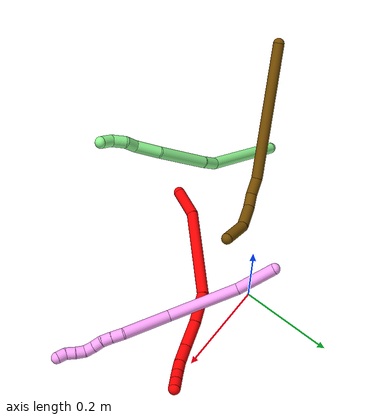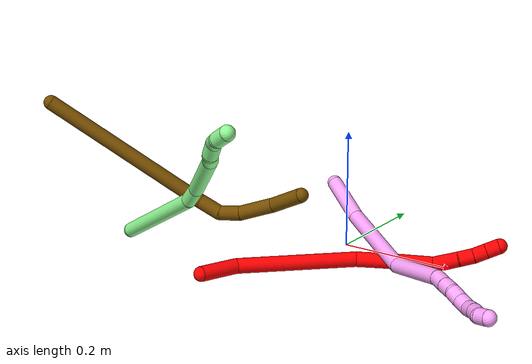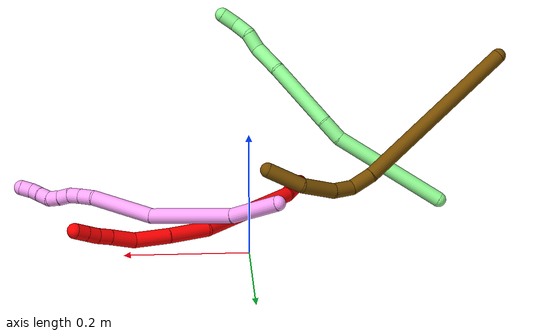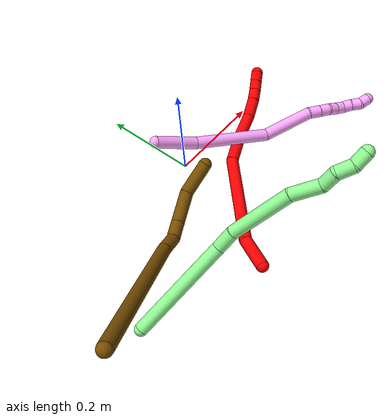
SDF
<sdf version="1.7">
 <world name="default">
  <model name="2">
   <static>0</static>
   <link name="2">
    <collision name="collision-cylinder-e_1_1_4">
     <pose>0.005098 0.009315 -0.030185 -2.84228 0.160003 -0.977372</pose>
     <geometry><cylinder><radius>0.0125</radius><length>0.063996</length></cylinder></geometry>
     <surface>
      <friction><ode><mu>1.16</mu><mu2>1.16</mu2><slip1>0</slip1><slip2>0</slip2></ode></friction>
      <contact><ode><kp>1e+06</kp><kd>1</kd><max_vel>0</max_vel><min_depth>0.001</min_depth></ode></contact>
     </surface>
    </collision>
    <visual name="visual-cylinder-e_1_1_4">
     <pose>0.005098 0.009315 -0.030185 -2.84228 0.160003 -0.977372</pose>
     <geometry><cylinder><radius>0.0125</radius><length>0.063996</length></cylinder></geometry>
     <material><ambient>1 0 0 1</ambient></material>
    </visual>
    <collision name="collision-cylinder-e_2_4_5">
     <pose>0.060705 0.046745 -0.141055 -2.80629 0.533883 -2.03324</pose>
     <geometry><cylinder><radius>0.0125</radius><length>0.198511</length></cylinder></geometry>
     <surface>
      <friction><ode><mu>1.16</mu><mu2>1.16</mu2><slip1>0</slip1><slip2>0</slip2></ode></friction>
      <contact><ode><kp>1e+06</kp><kd>1</kd><max_vel>0</max_vel><min_depth>0.001</min_depth></ode></contact>
     </surface>
    </collision>
    <visual name="visual-cylinder-e_2_4_5">
     <pose>0.060705 0.046745 -0.141055 -2.80629 0.533883 -2.03324</pose>
     <geometry><cylinder><radius>0.0125</radius><length>0.198511</length></cylinder></geometry>
     <material><ambient>1 0 0 1</ambient></material>
    </visual>
    <collision name="collision-cylinder-e_3_5_6">
     <pose>0.137865 0.084164 -0.241085 -2.69333 0.892724 -2.25252</pose>
     <geometry><cylinder><radius>0.0125</radius><length>0.068441</length></cylinder></geometry>
     <surface>
      <friction><ode><mu>1.16</mu><mu2>1.16</mu2><slip1>0</slip1><slip2>0</slip2></ode></friction>
      <contact><ode><kp>1e+06</kp><kd>1</kd><max_vel>0</max_vel><min_depth>0.001</min_depth></ode></contact>
     </surface>
    </collision>
    <visual name="visual-cylinder-e_3_5_6">
     <pose>0.137865 0.084164 -0.241085 -2.69333 0.892724 -2.25252</pose>
     <geometry><cylinder><radius>0.0125</radius><length>0.068441</length></cylinder></geometry>
     <material><ambient>1 0 0 1</ambient></material>
    </visual>
    <collision name="collision-cylinder-e_4_6_7">
     <pose>0.189086 0.101409 -0.27487 -2.63875 0.980029 -2.24405</pose>
     <geometry><cylinder><radius>0.0125</radius><length>0.059171</length></cylinder></geometry>
     <surface>
      <friction><ode><mu>1.16</mu><mu2>1.16</mu2><slip1>0</slip1><slip2>0</slip2></ode></friction>
      <contact><ode><kp>1e+06</kp><kd>1</kd><max_vel>0</max_vel><min_depth>0.001</min_depth></ode></contact>
     </surface>
    </collision>
    <visual name="visual-cylinder-e_4_6_7">
     <pose>0.189086 0.101409 -0.27487 -2.63875 0.980029 -2.24405</pose>
     <geometry><cylinder><radius>0.0125</radius><length>0.059171</length></cylinder></geometry>
     <material><ambient>1 0 0 1</ambient></material>
    </visual>
    <collision name="collision-cylinder-e_5_7_8">
     <pose>0.229159 0.120488 -0.298431 -2.25704 0.822365 -1.48833</pose>
     <geometry><cylinder><radius>0.0125</radius><length>0.042311</length></cylinder></geometry>
     <surface>
      <friction><ode><mu>1.16</mu><mu2>1.16</mu2><slip1>0</slip1><slip2>0</slip2></ode></friction>
      <contact><ode><kp>1e+06</kp><kd>1</kd><max_vel>0</max_vel><min_depth>0.001</min_depth></ode></contact>
     </surface>
    </collision>
    <visual name="visual-cylinder-e_5_7_8">
     <pose>0.229159 0.120488 -0.298431 -2.25704 0.822365 -1.48833</pose>
     <geometry><cylinder><radius>0.0125</radius><length>0.042311</length></cylinder></geometry>
     <material><ambient>1 0 0 1</ambient></material>
    </visual>
    <collision name="collision-cylinder-e_6_8_9">
     <pose>0.252823 0.13809 -0.313831 -2.34164 0.735975 -1.47877</pose>
     <geometry><cylinder><radius>0.0125</radius><length>0.024317</length></cylinder></geometry>
     <surface>
      <friction><ode><mu>1.16</mu><mu2>1.16</mu2><slip1>0</slip1><slip2>0</slip2></ode></friction>
      <contact><ode><kp>1e+06</kp><kd>1</kd><max_vel>0</max_vel><min_depth>0.001</min_depth></ode></contact>
     </surface>
    </collision>
    <visual name="visual-cylinder-e_6_8_9">
     <pose>0.252823 0.13809 -0.313831 -2.34164 0.735975 -1.47877</pose>
     <geometry><cylinder><radius>0.0125</radius><length>0.024317</length></cylinder></geometry>
     <material><ambient>1 0 0 1</ambient></material>
    </visual>
    <collision name="collision-cylinder-e_7_9_10">
     <pose>0.267429 0.151394 -0.325367 -2.22603 0.641538 -1.1866</pose>
     <geometry><cylinder><radius>0.0125</radius><length>0.021536</length></cylinder></geometry>
     <surface>
      <friction><ode><mu>1.16</mu><mu2>1.16</mu2><slip1>0</slip1><slip2>0</slip2></ode></friction>
      <contact><ode><kp>1e+06</kp><kd>1</kd><max_vel>0</max_vel><min_depth>0.001</min_depth></ode></contact>
     </surface>
    </collision>
    <visual name="visual-cylinder-e_7_9_10">
     <pose>0.267429 0.151394 -0.325367 -2.22603 0.641538 -1.1866</pose>
     <geometry><cylinder><radius>0.0125</radius><length>0.021536</length></cylinder></geometry>
     <material><ambient>1 0 0 1</ambient></material>
    </visual>
    <collision name="collision-cylinder-e_8_10_2">
     <pose>0.280381 0.165121 -0.335927 -2.22706 0.642648 -1.18952</pose>
     <geometry><cylinder><radius>0.0125</radius><length>0.021716</length></cylinder></geometry>
     <surface>
      <friction><ode><mu>1.16</mu><mu2>1.16</mu2><slip1>0</slip1><slip2>0</slip2></ode></friction>
      <contact><ode><kp>1e+06</kp><kd>1</kd><max_vel>0</max_vel><min_depth>0.001</min_depth></ode></contact>
     </surface>
    </collision>
    <visual name="visual-cylinder-e_8_10_2">
     <pose>0.280381 0.165121 -0.335927 -2.22706 0.642648 -1.18952</pose>
     <geometry><cylinder><radius>0.0125</radius><length>0.021716</length></cylinder></geometry>
     <material><ambient>1 0 0 1</ambient></material>
    </visual>
    <collision name="collision-sphere-2">
     <pose>0.286888 0.172008 -0.341231 0 -0 0</pose>
     <geometry><sphere><radius>0.0125</radius></sphere></geometry>
     <surface>
      <friction><ode><mu>1.16</mu><mu2>1.16</mu2><slip1>0</slip1><slip2>0</slip2></ode></friction>
      <contact><ode><kp>1e+06</kp><kd>1</kd><max_vel>0</max_vel><min_depth>0.001</min_depth></ode></contact>
     </surface>
    </collision>
    <visual name="visual-sphere-2">
     <pose>0.286888 0.172008 -0.341231 0 -0 0</pose>
     <geometry><sphere><radius>0.0125</radius></sphere></geometry>
     <material><ambient>1 0 0 1</ambient></material>
    </visual>
    <collision name="collision-sphere-10">
     <pose>0.273873 0.158235 -0.330624 0 -0 0</pose>
     <geometry><sphere><radius>0.0125</radius></sphere></geometry>
     <surface>
      <friction><ode><mu>1.16</mu><mu2>1.16</mu2><slip1>0</slip1><slip2>0</slip2></ode></friction>
      <contact><ode><kp>1e+06</kp><kd>1</kd><max_vel>0</max_vel><min_depth>0.001</min_depth></ode></contact>
     </surface>
    </collision>
    <visual name="visual-sphere-10">
     <pose>0.273873 0.158235 -0.330624 0 -0 0</pose>
     <geometry><sphere><radius>0.0125</radius></sphere></geometry>
     <material><ambient>1 0 0 1</ambient></material>
    </visual>
    <collision name="collision-sphere-9">
     <pose>0.260986 0.144554 -0.32011 0 -0 0</pose>
     <geometry><sphere><radius>0.0125</radius></sphere></geometry>
     <surface>
      <friction><ode><mu>1.16</mu><mu2>1.16</mu2><slip1>0</slip1><slip2>0</slip2></ode></friction>
      <contact><ode><kp>1e+06</kp><kd>1</kd><max_vel>0</max_vel><min_depth>0.001</min_depth></ode></contact>
     </surface>
    </collision>
    <visual name="visual-sphere-9">
     <pose>0.260986 0.144554 -0.32011 0 -0 0</pose>
     <geometry><sphere><radius>0.0125</radius></sphere></geometry>
     <material><ambient>1 0 0 1</ambient></material>
    </visual>
    <collision name="collision-sphere-4">
     <pose>0.010196 0.018629 -0.06037 0 -0 0</pose>
     <geometry><sphere><radius>0.0125</radius></sphere></geometry>
     <surface>
      <friction><ode><mu>1.16</mu><mu2>1.16</mu2><slip1>0</slip1><slip2>0</slip2></ode></friction>
      <contact><ode><kp>1e+06</kp><kd>1</kd><max_vel>0</max_vel><min_depth>0.001</min_depth></ode></contact>
     </surface>
    </collision>
    <visual name="visual-sphere-4">
     <pose>0.010196 0.018629 -0.06037 0 -0 0</pose>
     <geometry><sphere><radius>0.0125</radius></sphere></geometry>
     <material><ambient>1 0 0 1</ambient></material>
    </visual>
    <collision name="collision-sphere-1">
     <geometry><sphere><radius>0.0125</radius></sphere></geometry>
     <surface>
      <friction><ode><mu>1.16</mu><mu2>1.16</mu2><slip1>0</slip1><slip2>0</slip2></ode></friction>
      <contact><ode><kp>1e+06</kp><kd>1</kd><max_vel>0</max_vel><min_depth>0.001</min_depth></ode></contact>
     </surface>
    </collision>
    <visual name="visual-sphere-1">
     <geometry><sphere><radius>0.0125</radius></sphere></geometry>
     <material><ambient>1 0 0 1</ambient></material>
    </visual>
    <collision name="collision-sphere-8">
     <pose>0.244661 0.131625 -0.307552 0 -0 0</pose>
     <geometry><sphere><radius>0.0125</radius></sphere></geometry>
     <surface>
      <friction><ode><mu>1.16</mu><mu2>1.16</mu2><slip1>0</slip1><slip2>0</slip2></ode></friction>
      <contact><ode><kp>1e+06</kp><kd>1</kd><max_vel>0</max_vel><min_depth>0.001</min_depth></ode></contact>
     </surface>
    </collision>
    <visual name="visual-sphere-8">
     <pose>0.244661 0.131625 -0.307552 0 -0 0</pose>
     <geometry><sphere><radius>0.0125</radius></sphere></geometry>
     <material><ambient>1 0 0 1</ambient></material>
    </visual>
    <collision name="collision-sphere-5">
     <pose>0.111214 0.074861 -0.221739 0 -0 0</pose>
     <geometry><sphere><radius>0.0125</radius></sphere></geometry>
     <surface>
      <friction><ode><mu>1.16</mu><mu2>1.16</mu2><slip1>0</slip1><slip2>0</slip2></ode></friction>
      <contact><ode><kp>1e+06</kp><kd>1</kd><max_vel>0</max_vel><min_depth>0.001</min_depth></ode></contact>
     </surface>
    </collision>
    <visual name="visual-sphere-5">
     <pose>0.111214 0.074861 -0.221739 0 -0 0</pose>
     <geometry><sphere><radius>0.0125</radius></sphere></geometry>
     <material><ambient>1 0 0 1</ambient></material>
    </visual>
    <collision name="collision-sphere-6">
     <pose>0.164515 0.093468 -0.26043 0 -0 0</pose>
     <geometry><sphere><radius>0.0125</radius></sphere></geometry>
     <surface>
      <friction><ode><mu>1.16</mu><mu2>1.16</mu2><slip1>0</slip1><slip2>0</slip2></ode></friction>
      <contact><ode><kp>1e+06</kp><kd>1</kd><max_vel>0</max_vel><min_depth>0.001</min_depth></ode></contact>
     </surface>
    </collision>
    <visual name="visual-sphere-6">
     <pose>0.164515 0.093468 -0.26043 0 -0 0</pose>
     <geometry><sphere><radius>0.0125</radius></sphere></geometry>
     <material><ambient>1 0 0 1</ambient></material>
    </visual>
    <collision name="collision-sphere-7">
     <pose>0.213658 0.109351 -0.289309 0 -0 0</pose>
     <geometry><sphere><radius>0.0125</radius></sphere></geometry>
     <surface>
      <friction><ode><mu>1.16</mu><mu2>1.16</mu2><slip1>0</slip1><slip2>0</slip2></ode></friction>
      <contact><ode><kp>1e+06</kp><kd>1</kd><max_vel>0</max_vel><min_depth>0.001</min_depth></ode></contact>
     </surface>
    </collision>
    <visual name="visual-sphere-7">
     <pose>0.213658 0.109351 -0.289309 0 -0 0</pose>
     <geometry><sphere><radius>0.0125</radius></sphere></geometry>
     <material><ambient>1 0 0 1</ambient></material>
    </visual>
    <inertial>
     <pose>0.121386 0.073877 -0.194515 0 -0 0</pose>
     <mass>0.5</mass>
     <inertia>
      <ixx>-0.000795</ixx>
      <ixy>0</ixy>
      <ixz>0</ixz>
      <iyy>-0.000135</iyy>
      <iyz>0</iyz>
      <izz>-0.000629</izz>
     </inertia>
    </inertial>
   </link>
   <pose>-0.10079 -0.274226 0.012172 1.30045 0.121449 -0.247506</pose>
  </model>
  <model name="4">
   <static>0</static>
   <link name="4">
    <collision name="collision-cylinder-e_1_1_4">
     <pose>0.033976 -0.009495 0.026928 0.339007 0.871908 0.159119</pose>
     <geometry><cylinder><radius>0.0125</radius><length>0.088762</length></cylinder></geometry>
     <surface>
      <friction><ode><mu>1.16</mu><mu2>1.16</mu2><slip1>0</slip1><slip2>0</slip2></ode></friction>
      <contact><ode><kp>1e+06</kp><kd>1</kd><max_vel>0</max_vel><min_depth>0.001</min_depth></ode></contact>
     </surface>
    </collision>
    <visual name="visual-cylinder-e_1_1_4">
     <pose>0.033976 -0.009495 0.026928 0.339007 0.871908 0.159119</pose>
     <geometry><cylinder><radius>0.0125</radius><length>0.088762</length></cylinder></geometry>
     <material><ambient>1 0.65098 0.996078 1</ambient></material>
    </visual>
    <collision name="collision-cylinder-e_2_4_5">
     <pose>0.135232 -0.042541 0.08678 0.620927 1.02915 0.35889</pose>
     <geometry><cylinder><radius>0.0125</radius><length>0.157037</length></cylinder></geometry>
     <surface>
      <friction><ode><mu>1.16</mu><mu2>1.16</mu2><slip1>0</slip1><slip2>0</slip2></ode></friction>
      <contact><ode><kp>1e+06</kp><kd>1</kd><max_vel>0</max_vel><min_depth>0.001</min_depth></ode></contact>
     </surface>
    </collision>
    <visual name="visual-cylinder-e_2_4_5">
     <pose>0.135232 -0.042541 0.08678 0.620927 1.02915 0.35889</pose>
     <geometry><cylinder><radius>0.0125</radius><length>0.157037</length></cylinder></geometry>
     <material><ambient>1 0.65098 0.996078 1</ambient></material>
    </visual>
    <collision name="collision-cylinder-e_3_5_6">
     <pose>0.245537 -0.09602 0.127688 1.31009 0.946833 0.749825</pose>
     <geometry><cylinder><radius>0.0125</radius><length>0.106031</length></cylinder></geometry>
     <surface>
      <friction><ode><mu>1.16</mu><mu2>1.16</mu2><slip1>0</slip1><slip2>0</slip2></ode></friction>
      <contact><ode><kp>1e+06</kp><kd>1</kd><max_vel>0</max_vel><min_depth>0.001</min_depth></ode></contact>
     </surface>
    </collision>
    <visual name="visual-cylinder-e_3_5_6">
     <pose>0.245537 -0.09602 0.127688 1.31009 0.946833 0.749825</pose>
     <geometry><cylinder><radius>0.0125</radius><length>0.106031</length></cylinder></geometry>
     <material><ambient>1 0.65098 0.996078 1</ambient></material>
    </visual>
    <collision name="collision-cylinder-e_4_6_7">
     <pose>0.299839 -0.130254 0.139748 0.812802 1.08669 0.508608</pose>
     <geometry><cylinder><radius>0.0125</radius><length>0.02548</length></cylinder></geometry>
     <surface>
      <friction><ode><mu>1.16</mu><mu2>1.16</mu2><slip1>0</slip1><slip2>0</slip2></ode></friction>
      <contact><ode><kp>1e+06</kp><kd>1</kd><max_vel>0</max_vel><min_depth>0.001</min_depth></ode></contact>
     </surface>
    </collision>
    <visual name="visual-cylinder-e_4_6_7">
     <pose>0.299839 -0.130254 0.139748 0.812802 1.08669 0.508608</pose>
     <geometry><cylinder><radius>0.0125</radius><length>0.02548</length></cylinder></geometry>
     <material><ambient>1 0.65098 0.996078 1</ambient></material>
    </visual>
    <collision name="collision-cylinder-e_5_7_8">
     <pose>0.320498 -0.138662 0.14762 0.824203 1.03366 0.487035</pose>
     <geometry><cylinder><radius>0.0125</radius><length>0.021843</length></cylinder></geometry>
     <surface>
      <friction><ode><mu>1.16</mu><mu2>1.16</mu2><slip1>0</slip1><slip2>0</slip2></ode></friction>
      <contact><ode><kp>1e+06</kp><kd>1</kd><max_vel>0</max_vel><min_depth>0.001</min_depth></ode></contact>
     </surface>
    </collision>
    <visual name="visual-cylinder-e_5_7_8">
     <pose>0.320498 -0.138662 0.14762 0.824203 1.03366 0.487035</pose>
     <geometry><cylinder><radius>0.0125</radius><length>0.021843</length></cylinder></geometry>
     <material><ambient>1 0.65098 0.996078 1</ambient></material>
    </visual>
    <collision name="collision-cylinder-e_6_8_9">
     <pose>0.33713 -0.146144 0.157466 0.5095 0.807695 0.221651</pose>
     <geometry><cylinder><radius>0.0125</radius><length>0.020058</length></cylinder></geometry>
     <surface>
      <friction><ode><mu>1.16</mu><mu2>1.16</mu2><slip1>0</slip1><slip2>0</slip2></ode></friction>
      <contact><ode><kp>1e+06</kp><kd>1</kd><max_vel>0</max_vel><min_depth>0.001</min_depth></ode></contact>
     </surface>
    </collision>
    <visual name="visual-cylinder-e_6_8_9">
     <pose>0.33713 -0.146144 0.157466 0.5095 0.807695 0.221651</pose>
     <geometry><cylinder><radius>0.0125</radius><length>0.020058</length></cylinder></geometry>
     <material><ambient>1 0.65098 0.996078 1</ambient></material>
    </visual>
    <collision name="collision-cylinder-e_7_9_10">
     <pose>0.352437 -0.153297 0.16861 0.637488 0.904419 0.317908</pose>
     <geometry><cylinder><radius>0.0125</radius><length>0.020505</length></cylinder></geometry>
     <surface>
      <friction><ode><mu>1.16</mu><mu2>1.16</mu2><slip1>0</slip1><slip2>0</slip2></ode></friction>
      <contact><ode><kp>1e+06</kp><kd>1</kd><max_vel>0</max_vel><min_depth>0.001</min_depth></ode></contact>
     </surface>
    </collision>
    <visual name="visual-cylinder-e_7_9_10">
     <pose>0.352437 -0.153297 0.16861 0.637488 0.904419 0.317908</pose>
     <geometry><cylinder><radius>0.0125</radius><length>0.020505</length></cylinder></geometry>
     <material><ambient>1 0.65098 0.996078 1</ambient></material>
    </visual>
    <collision name="collision-cylinder-e_8_10_11">
     <pose>0.369835 -0.160925 0.17434 1.40717 1.17449 1.02811</pose>
     <geometry><cylinder><radius>0.0125</radius><length>0.020249</length></cylinder></geometry>
     <surface>
      <friction><ode><mu>1.16</mu><mu2>1.16</mu2><slip1>0</slip1><slip2>0</slip2></ode></friction>
      <contact><ode><kp>1e+06</kp><kd>1</kd><max_vel>0</max_vel><min_depth>0.001</min_depth></ode></contact>
     </surface>
    </collision>
    <visual name="visual-cylinder-e_8_10_11">
     <pose>0.369835 -0.160925 0.17434 1.40717 1.17449 1.02811</pose>
     <geometry><cylinder><radius>0.0125</radius><length>0.020249</length></cylinder></geometry>
     <material><ambient>1 0.65098 0.996078 1</ambient></material>
    </visual>
    <collision name="collision-cylinder-e_9_11_12">
     <pose>0.388856 -0.167159 0.175876 1.20904 1.31393 0.979044</pose>
     <geometry><cylinder><radius>0.0125</radius><length>0.020018</length></cylinder></geometry>
     <surface>
      <friction><ode><mu>1.16</mu><mu2>1.16</mu2><slip1>0</slip1><slip2>0</slip2></ode></friction>
      <contact><ode><kp>1e+06</kp><kd>1</kd><max_vel>0</max_vel><min_depth>0.001</min_depth></ode></contact>
     </surface>
    </collision>
    <visual name="visual-cylinder-e_9_11_12">
     <pose>0.388856 -0.167159 0.175876 1.20904 1.31393 0.979044</pose>
     <geometry><cylinder><radius>0.0125</radius><length>0.020018</length></cylinder></geometry>
     <material><ambient>1 0.65098 0.996078 1</ambient></material>
    </visual>
    <collision name="collision-cylinder-e_10_12_2">
     <pose>0.40604 -0.175964 0.178382 1.32598 0.847605 0.677443</pose>
     <geometry><cylinder><radius>0.0125</radius><length>0.020018</length></cylinder></geometry>
     <surface>
      <friction><ode><mu>1.16</mu><mu2>1.16</mu2><slip1>0</slip1><slip2>0</slip2></ode></friction>
      <contact><ode><kp>1e+06</kp><kd>1</kd><max_vel>0</max_vel><min_depth>0.001</min_depth></ode></contact>
     </surface>
    </collision>
    <visual name="visual-cylinder-e_10_12_2">
     <pose>0.40604 -0.175964 0.178382 1.32598 0.847605 0.677443</pose>
     <geometry><cylinder><radius>0.0125</radius><length>0.020018</length></cylinder></geometry>
     <material><ambient>1 0.65098 0.996078 1</ambient></material>
    </visual>
    <collision name="collision-sphere-2">
     <pose>0.413544 -0.18239 0.179987 0 -0 0</pose>
     <geometry><sphere><radius>0.0125</radius></sphere></geometry>
     <surface>
      <friction><ode><mu>1.16</mu><mu2>1.16</mu2><slip1>0</slip1><slip2>0</slip2></ode></friction>
      <contact><ode><kp>1e+06</kp><kd>1</kd><max_vel>0</max_vel><min_depth>0.001</min_depth></ode></contact>
     </surface>
    </collision>
    <visual name="visual-sphere-2">
     <pose>0.413544 -0.18239 0.179987 0 -0 0</pose>
     <geometry><sphere><radius>0.0125</radius></sphere></geometry>
     <material><ambient>1 0.65098 0.996078 1</ambient></material>
    </visual>
    <collision name="collision-sphere-12">
     <pose>0.398536 -0.169537 0.176776 0 -0 0</pose>
     <geometry><sphere><radius>0.0125</radius></sphere></geometry>
     <surface>
      <friction><ode><mu>1.16</mu><mu2>1.16</mu2><slip1>0</slip1><slip2>0</slip2></ode></friction>
      <contact><ode><kp>1e+06</kp><kd>1</kd><max_vel>0</max_vel><min_depth>0.001</min_depth></ode></contact>
     </surface>
    </collision>
    <visual name="visual-sphere-12">
     <pose>0.398536 -0.169537 0.176776 0 -0 0</pose>
     <geometry><sphere><radius>0.0125</radius></sphere></geometry>
     <material><ambient>1 0.65098 0.996078 1</ambient></material>
    </visual>
    <collision name="collision-sphere-11">
     <pose>0.379175 -0.164781 0.174976 0 -0 0</pose>
     <geometry><sphere><radius>0.0125</radius></sphere></geometry>
     <surface>
      <friction><ode><mu>1.16</mu><mu2>1.16</mu2><slip1>0</slip1><slip2>0</slip2></ode></friction>
      <contact><ode><kp>1e+06</kp><kd>1</kd><max_vel>0</max_vel><min_depth>0.001</min_depth></ode></contact>
     </surface>
    </collision>
    <visual name="visual-sphere-11">
     <pose>0.379175 -0.164781 0.174976 0 -0 0</pose>
     <geometry><sphere><radius>0.0125</radius></sphere></geometry>
     <material><ambient>1 0.65098 0.996078 1</ambient></material>
    </visual>
    <collision name="collision-sphere-10">
     <pose>0.360496 -0.157069 0.173703 0 -0 0</pose>
     <geometry><sphere><radius>0.0125</radius></sphere></geometry>
     <surface>
      <friction><ode><mu>1.16</mu><mu2>1.16</mu2><slip1>0</slip1><slip2>0</slip2></ode></friction>
      <contact><ode><kp>1e+06</kp><kd>1</kd><max_vel>0</max_vel><min_depth>0.001</min_depth></ode></contact>
     </surface>
    </collision>
    <visual name="visual-sphere-10">
     <pose>0.360496 -0.157069 0.173703 0 -0 0</pose>
     <geometry><sphere><radius>0.0125</radius></sphere></geometry>
     <material><ambient>1 0.65098 0.996078 1</ambient></material>
    </visual>
    <collision name="collision-sphere-9">
     <pose>0.344378 -0.149525 0.163518 0 -0 0</pose>
     <geometry><sphere><radius>0.0125</radius></sphere></geometry>
     <surface>
      <friction><ode><mu>1.16</mu><mu2>1.16</mu2><slip1>0</slip1><slip2>0</slip2></ode></friction>
      <contact><ode><kp>1e+06</kp><kd>1</kd><max_vel>0</max_vel><min_depth>0.001</min_depth></ode></contact>
     </surface>
    </collision>
    <visual name="visual-sphere-9">
     <pose>0.344378 -0.149525 0.163518 0 -0 0</pose>
     <geometry><sphere><radius>0.0125</radius></sphere></geometry>
     <material><ambient>1 0.65098 0.996078 1</ambient></material>
    </visual>
    <collision name="collision-sphere-4">
     <pose>0.067952 -0.018991 0.053856 0 -0 0</pose>
     <geometry><sphere><radius>0.0125</radius></sphere></geometry>
     <surface>
      <friction><ode><mu>1.16</mu><mu2>1.16</mu2><slip1>0</slip1><slip2>0</slip2></ode></friction>
      <contact><ode><kp>1e+06</kp><kd>1</kd><max_vel>0</max_vel><min_depth>0.001</min_depth></ode></contact>
     </surface>
    </collision>
    <visual name="visual-sphere-4">
     <pose>0.067952 -0.018991 0.053856 0 -0 0</pose>
     <geometry><sphere><radius>0.0125</radius></sphere></geometry>
     <material><ambient>1 0.65098 0.996078 1</ambient></material>
    </visual>
    <collision name="collision-sphere-1">
     <geometry><sphere><radius>0.0125</radius></sphere></geometry>
     <surface>
      <friction><ode><mu>1.16</mu><mu2>1.16</mu2><slip1>0</slip1><slip2>0</slip2></ode></friction>
      <contact><ode><kp>1e+06</kp><kd>1</kd><max_vel>0</max_vel><min_depth>0.001</min_depth></ode></contact>
     </surface>
    </collision>
    <visual name="visual-sphere-1">
     <geometry><sphere><radius>0.0125</radius></sphere></geometry>
     <material><ambient>1 0.65098 0.996078 1</ambient></material>
    </visual>
    <collision name="collision-sphere-8">
     <pose>0.329882 -0.142764 0.151415 0 -0 0</pose>
     <geometry><sphere><radius>0.0125</radius></sphere></geometry>
     <surface>
      <friction><ode><mu>1.16</mu><mu2>1.16</mu2><slip1>0</slip1><slip2>0</slip2></ode></friction>
      <contact><ode><kp>1e+06</kp><kd>1</kd><max_vel>0</max_vel><min_depth>0.001</min_depth></ode></contact>
     </surface>
    </collision>
    <visual name="visual-sphere-8">
     <pose>0.329882 -0.142764 0.151415 0 -0 0</pose>
     <geometry><sphere><radius>0.0125</radius></sphere></geometry>
     <material><ambient>1 0.65098 0.996078 1</ambient></material>
    </visual>
    <collision name="collision-sphere-5">
     <pose>0.202511 -0.066092 0.119704 0 -0 0</pose>
     <geometry><sphere><radius>0.0125</radius></sphere></geometry>
     <surface>
      <friction><ode><mu>1.16</mu><mu2>1.16</mu2><slip1>0</slip1><slip2>0</slip2></ode></friction>
      <contact><ode><kp>1e+06</kp><kd>1</kd><max_vel>0</max_vel><min_depth>0.001</min_depth></ode></contact>
     </surface>
    </collision>
    <visual name="visual-sphere-5">
     <pose>0.202511 -0.066092 0.119704 0 -0 0</pose>
     <geometry><sphere><radius>0.0125</radius></sphere></geometry>
     <material><ambient>1 0.65098 0.996078 1</ambient></material>
    </visual>
    <collision name="collision-sphere-6">
     <pose>0.288562 -0.125948 0.135672 0 -0 0</pose>
     <geometry><sphere><radius>0.0125</radius></sphere></geometry>
     <surface>
      <friction><ode><mu>1.16</mu><mu2>1.16</mu2><slip1>0</slip1><slip2>0</slip2></ode></friction>
      <contact><ode><kp>1e+06</kp><kd>1</kd><max_vel>0</max_vel><min_depth>0.001</min_depth></ode></contact>
     </surface>
    </collision>
    <visual name="visual-sphere-6">
     <pose>0.288562 -0.125948 0.135672 0 -0 0</pose>
     <geometry><sphere><radius>0.0125</radius></sphere></geometry>
     <material><ambient>1 0.65098 0.996078 1</ambient></material>
    </visual>
    <collision name="collision-sphere-7">
     <pose>0.311115 -0.13456 0.143824 0 -0 0</pose>
     <geometry><sphere><radius>0.0125</radius></sphere></geometry>
     <surface>
      <friction><ode><mu>1.16</mu><mu2>1.16</mu2><slip1>0</slip1><slip2>0</slip2></ode></friction>
      <contact><ode><kp>1e+06</kp><kd>1</kd><max_vel>0</max_vel><min_depth>0.001</min_depth></ode></contact>
     </surface>
    </collision>
    <visual name="visual-sphere-7">
     <pose>0.311115 -0.13456 0.143824 0 -0 0</pose>
     <geometry><sphere><radius>0.0125</radius></sphere></geometry>
     <material><ambient>1 0.65098 0.996078 1</ambient></material>
    </visual>
    <inertial>
     <pose>0.204634 -0.080508 0.107159 0 -0 0</pose>
     <mass>0.5</mass>
     <inertia>
      <ixx>0.000389</ixx>
      <ixy>0</ixy>
      <ixz>0</ixz>
      <iyy>0.000549</iyy>
      <iyz>0</iyz>
      <izz>-0.000234</izz>
     </inertia>
    </inertial>
   </link>
   <pose>-0.04391 0.029205 0.09598 -2.69025 -0.052285 -1.06159</pose>
  </model>
  <model name="12">
   <static>0</static>
   <link name="12">
    <collision name="collision-cylinder-e_1_1_4">
     <pose>-0.059505 -0.134703 -0.033481 1.81441 -0.405002 -0.513593</pose>
     <geometry><cylinder><radius>0.0125</radius><length>0.302038</length></cylinder></geometry>
     <surface>
      <friction><ode><mu>1.16</mu><mu2>1.16</mu2><slip1>0</slip1><slip2>0</slip2></ode></friction>
      <contact><ode><kp>1e+06</kp><kd>1</kd><max_vel>0</max_vel><min_depth>0.001</min_depth></ode></contact>
     </surface>
    </collision>
    <visual name="visual-cylinder-e_1_1_4">
     <pose>-0.059505 -0.134703 -0.033481 1.81441 -0.405002 -0.513593</pose>
     <geometry><cylinder><radius>0.0125</radius><length>0.302038</length></cylinder></geometry>
     <material><ambient>0.466667 0.301961 0 1</ambient></material>
    </visual>
    <collision name="collision-cylinder-e_2_4_5">
     <pose>-0.126613 -0.28731 -0.067634 1.60831 -0.401351 -0.416265</pose>
     <geometry><cylinder><radius>0.0125</radius><length>0.038927</length></cylinder></geometry>
     <surface>
      <friction><ode><mu>1.16</mu><mu2>1.16</mu2><slip1>0</slip1><slip2>0</slip2></ode></friction>
      <contact><ode><kp>1e+06</kp><kd>1</kd><max_vel>0</max_vel><min_depth>0.001</min_depth></ode></contact>
     </surface>
    </collision>
    <visual name="visual-cylinder-e_2_4_5">
     <pose>-0.126613 -0.28731 -0.067634 1.60831 -0.401351 -0.416265</pose>
     <geometry><cylinder><radius>0.0125</radius><length>0.038927</length></cylinder></geometry>
     <material><ambient>0.466667 0.301961 0 1</ambient></material>
    </visual>
    <collision name="collision-cylinder-e_3_5_6">
     <pose>-0.132524 -0.322712 -0.066598 1.47349 0.095949 0.087051</pose>
     <geometry><cylinder><radius>0.0125</radius><length>0.035324</length></cylinder></geometry>
     <surface>
      <friction><ode><mu>1.16</mu><mu2>1.16</mu2><slip1>0</slip1><slip2>0</slip2></ode></friction>
      <contact><ode><kp>1e+06</kp><kd>1</kd><max_vel>0</max_vel><min_depth>0.001</min_depth></ode></contact>
     </surface>
    </collision>
    <visual name="visual-cylinder-e_3_5_6">
     <pose>-0.132524 -0.322712 -0.066598 1.47349 0.095949 0.087051</pose>
     <geometry><cylinder><radius>0.0125</radius><length>0.035324</length></cylinder></geometry>
     <material><ambient>0.466667 0.301961 0 1</ambient></material>
    </visual>
    <collision name="collision-cylinder-e_4_6_7">
     <pose>-0.121695 -0.367641 -0.055679 1.24686 0.305869 0.220781</pose>
     <geometry><cylinder><radius>0.0125</radius><length>0.060691</length></cylinder></geometry>
     <surface>
      <friction><ode><mu>1.16</mu><mu2>1.16</mu2><slip1>0</slip1><slip2>0</slip2></ode></friction>
      <contact><ode><kp>1e+06</kp><kd>1</kd><max_vel>0</max_vel><min_depth>0.001</min_depth></ode></contact>
     </surface>
    </collision>
    <visual name="visual-cylinder-e_4_6_7">
     <pose>-0.121695 -0.367641 -0.055679 1.24686 0.305869 0.220781</pose>
     <geometry><cylinder><radius>0.0125</radius><length>0.060691</length></cylinder></geometry>
     <material><ambient>0.466667 0.301961 0 1</ambient></material>
    </visual>
    <collision name="collision-cylinder-e_5_7_2">
     <pose>-0.105289 -0.418242 -0.026387 0.856645 0.232763 0.106659</pose>
     <geometry><cylinder><radius>0.0125</radius><length>0.063021</length></cylinder></geometry>
     <surface>
      <friction><ode><mu>1.16</mu><mu2>1.16</mu2><slip1>0</slip1><slip2>0</slip2></ode></friction>
      <contact><ode><kp>1e+06</kp><kd>1</kd><max_vel>0</max_vel><min_depth>0.001</min_depth></ode></contact>
     </surface>
    </collision>
    <visual name="visual-cylinder-e_5_7_2">
     <pose>-0.105289 -0.418242 -0.026387 0.856645 0.232763 0.106659</pose>
     <geometry><cylinder><radius>0.0125</radius><length>0.063021</length></cylinder></geometry>
     <material><ambient>0.466667 0.301961 0 1</ambient></material>
    </visual>
    <collision name="collision-sphere-2">
     <pose>-0.09802 -0.441411 -0.006304 0 -0 0</pose>
     <geometry><sphere><radius>0.0125</radius></sphere></geometry>
     <surface>
      <friction><ode><mu>1.16</mu><mu2>1.16</mu2><slip1>0</slip1><slip2>0</slip2></ode></friction>
      <contact><ode><kp>1e+06</kp><kd>1</kd><max_vel>0</max_vel><min_depth>0.001</min_depth></ode></contact>
     </surface>
    </collision>
    <visual name="visual-sphere-2">
     <pose>-0.09802 -0.441411 -0.006304 0 -0 0</pose>
     <geometry><sphere><radius>0.0125</radius></sphere></geometry>
     <material><ambient>0.466667 0.301961 0 1</ambient></material>
    </visual>
    <collision name="collision-sphere-7">
     <pose>-0.112557 -0.395073 -0.046469 0 -0 0</pose>
     <geometry><sphere><radius>0.0125</radius></sphere></geometry>
     <surface>
      <friction><ode><mu>1.16</mu><mu2>1.16</mu2><slip1>0</slip1><slip2>0</slip2></ode></friction>
      <contact><ode><kp>1e+06</kp><kd>1</kd><max_vel>0</max_vel><min_depth>0.001</min_depth></ode></contact>
     </surface>
    </collision>
    <visual name="visual-sphere-7">
     <pose>-0.112557 -0.395073 -0.046469 0 -0 0</pose>
     <geometry><sphere><radius>0.0125</radius></sphere></geometry>
     <material><ambient>0.466667 0.301961 0 1</ambient></material>
    </visual>
    <collision name="collision-sphere-6">
     <pose>-0.130832 -0.340209 -0.06489 0 -0 0</pose>
     <geometry><sphere><radius>0.0125</radius></sphere></geometry>
     <surface>
      <friction><ode><mu>1.16</mu><mu2>1.16</mu2><slip1>0</slip1><slip2>0</slip2></ode></friction>
      <contact><ode><kp>1e+06</kp><kd>1</kd><max_vel>0</max_vel><min_depth>0.001</min_depth></ode></contact>
     </surface>
    </collision>
    <visual name="visual-sphere-6">
     <pose>-0.130832 -0.340209 -0.06489 0 -0 0</pose>
     <geometry><sphere><radius>0.0125</radius></sphere></geometry>
     <material><ambient>0.466667 0.301961 0 1</ambient></material>
    </visual>
    <collision name="collision-sphere-5">
     <pose>-0.134216 -0.305214 -0.068306 0 -0 0</pose>
     <geometry><sphere><radius>0.0125</radius></sphere></geometry>
     <surface>
      <friction><ode><mu>1.16</mu><mu2>1.16</mu2><slip1>0</slip1><slip2>0</slip2></ode></friction>
      <contact><ode><kp>1e+06</kp><kd>1</kd><max_vel>0</max_vel><min_depth>0.001</min_depth></ode></contact>
     </surface>
    </collision>
    <visual name="visual-sphere-5">
     <pose>-0.134216 -0.305214 -0.068306 0 -0 0</pose>
     <geometry><sphere><radius>0.0125</radius></sphere></geometry>
     <material><ambient>0.466667 0.301961 0 1</ambient></material>
    </visual>
    <collision name="collision-sphere-1">
     <geometry><sphere><radius>0.0125</radius></sphere></geometry>
     <surface>
      <friction><ode><mu>1.16</mu><mu2>1.16</mu2><slip1>0</slip1><slip2>0</slip2></ode></friction>
      <contact><ode><kp>1e+06</kp><kd>1</kd><max_vel>0</max_vel><min_depth>0.001</min_depth></ode></contact>
     </surface>
    </collision>
    <visual name="visual-sphere-1">
     <geometry><sphere><radius>0.0125</radius></sphere></geometry>
     <material><ambient>0.466667 0.301961 0 1</ambient></material>
    </visual>
    <collision name="collision-sphere-4">
     <pose>-0.119009 -0.269406 -0.066962 0 -0 0</pose>
     <geometry><sphere><radius>0.0125</radius></sphere></geometry>
     <surface>
      <friction><ode><mu>1.16</mu><mu2>1.16</mu2><slip1>0</slip1><slip2>0</slip2></ode></friction>
      <contact><ode><kp>1e+06</kp><kd>1</kd><max_vel>0</max_vel><min_depth>0.001</min_depth></ode></contact>
     </surface>
    </collision>
    <visual name="visual-sphere-4">
     <pose>-0.119009 -0.269406 -0.066962 0 -0 0</pose>
     <geometry><sphere><radius>0.0125</radius></sphere></geometry>
     <material><ambient>0.466667 0.301961 0 1</ambient></material>
    </visual>
    <inertial>
     <pose>-0.083207 -0.223879 -0.04028 0 -0 0</pose>
     <mass>0.5</mass>
     <inertia>
      <ixx>0.000855</ixx>
      <ixy>0</ixy>
      <ixz>0</ixz>
      <iyy>-0.001098</iyy>
      <iyz>0</iyz>
      <izz>0.003005</izz>
     </inertia>
    </inertial>
   </link>
   <pose>-0.433827 -0.254785 0.240157 0.204791 -1.02127 1.89421</pose>
  </model>
  <model name="13">
   <static>0</static>
   <link name="13">
    <collision name="collision-cylinder-e_1_1_4">
     <pose>0.024055 0.03161 -0.090067 -2.80406 0.246865 -1.25872</pose>
     <geometry><cylinder><radius>0.0125</radius><length>0.196873</length></cylinder></geometry>
     <surface>
      <friction><ode><mu>1.16</mu><mu2>1.16</mu2><slip1>0</slip1><slip2>0</slip2></ode></friction>
      <contact><ode><kp>1e+06</kp><kd>1</kd><max_vel>0</max_vel><min_depth>0.001</min_depth></ode></contact>
     </surface>
    </collision>
    <visual name="visual-cylinder-e_1_1_4">
     <pose>0.024055 0.03161 -0.090067 -2.80406 0.246865 -1.25872</pose>
     <geometry><cylinder><radius>0.0125</radius><length>0.196873</length></cylinder></geometry>
     <material><ambient>0.564706 0.984314 0.572549 1</ambient></material>
    </visual>
    <collision name="collision-cylinder-e_2_4_5">
     <pose>0.052403 0.074253 -0.195228 -2.51039 0.225733 -0.668264</pose>
     <geometry><cylinder><radius>0.0125</radius><length>0.038369</length></cylinder></geometry>
     <surface>
      <friction><ode><mu>1.16</mu><mu2>1.16</mu2><slip1>0</slip1><slip2>0</slip2></ode></friction>
      <contact><ode><kp>1e+06</kp><kd>1</kd><max_vel>0</max_vel><min_depth>0.001</min_depth></ode></contact>
     </surface>
    </collision>
    <visual name="visual-cylinder-e_2_4_5">
     <pose>0.052403 0.074253 -0.195228 -2.51039 0.225733 -0.668264</pose>
     <geometry><cylinder><radius>0.0125</radius><length>0.038369</length></cylinder></geometry>
     <material><ambient>0.564706 0.984314 0.572549 1</ambient></material>
    </visual>
    <collision name="collision-cylinder-e_3_5_6">
     <pose>0.082504 0.119403 -0.253113 -2.4685 0.440644 -1.13883</pose>
     <geometry><cylinder><radius>0.0125</radius><length>0.121011</length></cylinder></geometry>
     <surface>
      <friction><ode><mu>1.16</mu><mu2>1.16</mu2><slip1>0</slip1><slip2>0</slip2></ode></friction>
      <contact><ode><kp>1e+06</kp><kd>1</kd><max_vel>0</max_vel><min_depth>0.001</min_depth></ode></contact>
     </surface>
    </collision>
    <visual name="visual-cylinder-e_3_5_6">
     <pose>0.082504 0.119403 -0.253113 -2.4685 0.440644 -1.13883</pose>
     <geometry><cylinder><radius>0.0125</radius><length>0.121011</length></cylinder></geometry>
     <material><ambient>0.564706 0.984314 0.572549 1</ambient></material>
    </visual>
    <collision name="collision-cylinder-e_4_6_7">
     <pose>0.126924 0.166586 -0.311786 -2.45316 0.735572 -1.64291</pose>
     <geometry><cylinder><radius>0.0125</radius><length>0.055478</length></cylinder></geometry>
     <surface>
      <friction><ode><mu>1.16</mu><mu2>1.16</mu2><slip1>0</slip1><slip2>0</slip2></ode></friction>
      <contact><ode><kp>1e+06</kp><kd>1</kd><max_vel>0</max_vel><min_depth>0.001</min_depth></ode></contact>
     </surface>
    </collision>
    <visual name="visual-cylinder-e_4_6_7">
     <pose>0.126924 0.166586 -0.311786 -2.45316 0.735572 -1.64291</pose>
     <geometry><cylinder><radius>0.0125</radius><length>0.055478</length></cylinder></geometry>
     <material><ambient>0.564706 0.984314 0.572549 1</ambient></material>
    </visual>
    <collision name="collision-cylinder-e_5_7_8">
     <pose>0.149278 0.19034 -0.33782 -2.33047 0.248548 -0.566244</pose>
     <geometry><cylinder><radius>0.0125</radius><length>0.030414</length></cylinder></geometry>
     <surface>
      <friction><ode><mu>1.16</mu><mu2>1.16</mu2><slip1>0</slip1><slip2>0</slip2></ode></friction>
      <contact><ode><kp>1e+06</kp><kd>1</kd><max_vel>0</max_vel><min_depth>0.001</min_depth></ode></contact>
     </surface>
    </collision>
    <visual name="visual-cylinder-e_5_7_8">
     <pose>0.149278 0.19034 -0.33782 -2.33047 0.248548 -0.566244</pose>
     <geometry><cylinder><radius>0.0125</radius><length>0.030414</length></cylinder></geometry>
     <material><ambient>0.564706 0.984314 0.572549 1</ambient></material>
    </visual>
    <collision name="collision-cylinder-e_6_8_9">
     <pose>0.162435 0.206947 -0.358418 -2.62613 0.665043 -1.8377</pose>
     <geometry><cylinder><radius>0.0125</radius><length>0.030519</length></cylinder></geometry>
     <surface>
      <friction><ode><mu>1.16</mu><mu2>1.16</mu2><slip1>0</slip1><slip2>0</slip2></ode></friction>
      <contact><ode><kp>1e+06</kp><kd>1</kd><max_vel>0</max_vel><min_depth>0.001</min_depth></ode></contact>
     </surface>
    </collision>
    <visual name="visual-cylinder-e_6_8_9">
     <pose>0.162435 0.206947 -0.358418 -2.62613 0.665043 -1.8377</pose>
     <geometry><cylinder><radius>0.0125</radius><length>0.030519</length></cylinder></geometry>
     <material><ambient>0.564706 0.984314 0.572549 1</ambient></material>
    </visual>
    <collision name="collision-cylinder-e_7_9_2">
     <pose>0.174991 0.217893 -0.381182 -2.75404 0.231747 -1.0707</pose>
     <geometry><cylinder><radius>0.0125</radius><length>0.027336</length></cylinder></geometry>
     <surface>
      <friction><ode><mu>1.16</mu><mu2>1.16</mu2><slip1>0</slip1><slip2>0</slip2></ode></friction>
      <contact><ode><kp>1e+06</kp><kd>1</kd><max_vel>0</max_vel><min_depth>0.001</min_depth></ode></contact>
     </surface>
    </collision>
    <visual name="visual-cylinder-e_7_9_2">
     <pose>0.174991 0.217893 -0.381182 -2.75404 0.231747 -1.0707</pose>
     <geometry><cylinder><radius>0.0125</radius><length>0.027336</length></cylinder></geometry>
     <material><ambient>0.564706 0.984314 0.572549 1</ambient></material>
    </visual>
    <collision name="collision-sphere-2">
     <pose>0.17813 0.22292 -0.393497 0 -0 0</pose>
     <geometry><sphere><radius>0.0125</radius></sphere></geometry>
     <surface>
      <friction><ode><mu>1.16</mu><mu2>1.16</mu2><slip1>0</slip1><slip2>0</slip2></ode></friction>
      <contact><ode><kp>1e+06</kp><kd>1</kd><max_vel>0</max_vel><min_depth>0.001</min_depth></ode></contact>
     </surface>
    </collision>
    <visual name="visual-sphere-2">
     <pose>0.17813 0.22292 -0.393497 0 -0 0</pose>
     <geometry><sphere><radius>0.0125</radius></sphere></geometry>
     <material><ambient>0.564706 0.984314 0.572549 1</ambient></material>
    </visual>
    <collision name="collision-sphere-9">
     <pose>0.171852 0.212866 -0.368866 0 -0 0</pose>
     <geometry><sphere><radius>0.0125</radius></sphere></geometry>
     <surface>
      <friction><ode><mu>1.16</mu><mu2>1.16</mu2><slip1>0</slip1><slip2>0</slip2></ode></friction>
      <contact><ode><kp>1e+06</kp><kd>1</kd><max_vel>0</max_vel><min_depth>0.001</min_depth></ode></contact>
     </surface>
    </collision>
    <visual name="visual-sphere-9">
     <pose>0.171852 0.212866 -0.368866 0 -0 0</pose>
     <geometry><sphere><radius>0.0125</radius></sphere></geometry>
     <material><ambient>0.564706 0.984314 0.572549 1</ambient></material>
    </visual>
    <collision name="collision-sphere-4">
     <pose>0.048109 0.063219 -0.180133 0 -0 0</pose>
     <geometry><sphere><radius>0.0125</radius></sphere></geometry>
     <surface>
      <friction><ode><mu>1.16</mu><mu2>1.16</mu2><slip1>0</slip1><slip2>0</slip2></ode></friction>
      <contact><ode><kp>1e+06</kp><kd>1</kd><max_vel>0</max_vel><min_depth>0.001</min_depth></ode></contact>
     </surface>
    </collision>
    <visual name="visual-sphere-4">
     <pose>0.048109 0.063219 -0.180133 0 -0 0</pose>
     <geometry><sphere><radius>0.0125</radius></sphere></geometry>
     <material><ambient>0.564706 0.984314 0.572549 1</ambient></material>
    </visual>
    <collision name="collision-sphere-1">
     <geometry><sphere><radius>0.0125</radius></sphere></geometry>
     <surface>
      <friction><ode><mu>1.16</mu><mu2>1.16</mu2><slip1>0</slip1><slip2>0</slip2></ode></friction>
      <contact><ode><kp>1e+06</kp><kd>1</kd><max_vel>0</max_vel><min_depth>0.001</min_depth></ode></contact>
     </surface>
    </collision>
    <visual name="visual-sphere-1">
     <geometry><sphere><radius>0.0125</radius></sphere></geometry>
     <material><ambient>0.564706 0.984314 0.572549 1</ambient></material>
    </visual>
    <collision name="collision-sphere-8">
     <pose>0.153019 0.201028 -0.347971 0 -0 0</pose>
     <geometry><sphere><radius>0.0125</radius></sphere></geometry>
     <surface>
      <friction><ode><mu>1.16</mu><mu2>1.16</mu2><slip1>0</slip1><slip2>0</slip2></ode></friction>
      <contact><ode><kp>1e+06</kp><kd>1</kd><max_vel>0</max_vel><min_depth>0.001</min_depth></ode></contact>
     </surface>
    </collision>
    <visual name="visual-sphere-8">
     <pose>0.153019 0.201028 -0.347971 0 -0 0</pose>
     <geometry><sphere><radius>0.0125</radius></sphere></geometry>
     <material><ambient>0.564706 0.984314 0.572549 1</ambient></material>
    </visual>
    <collision name="collision-sphere-5">
     <pose>0.056697 0.085287 -0.210323 0 -0 0</pose>
     <geometry><sphere><radius>0.0125</radius></sphere></geometry>
     <surface>
      <friction><ode><mu>1.16</mu><mu2>1.16</mu2><slip1>0</slip1><slip2>0</slip2></ode></friction>
      <contact><ode><kp>1e+06</kp><kd>1</kd><max_vel>0</max_vel><min_depth>0.001</min_depth></ode></contact>
     </surface>
    </collision>
    <visual name="visual-sphere-5">
     <pose>0.056697 0.085287 -0.210323 0 -0 0</pose>
     <geometry><sphere><radius>0.0125</radius></sphere></geometry>
     <material><ambient>0.564706 0.984314 0.572549 1</ambient></material>
    </visual>
    <collision name="collision-sphere-6">
     <pose>0.108311 0.15352 -0.295904 0 -0 0</pose>
     <geometry><sphere><radius>0.0125</radius></sphere></geometry>
     <surface>
      <friction><ode><mu>1.16</mu><mu2>1.16</mu2><slip1>0</slip1><slip2>0</slip2></ode></friction>
      <contact><ode><kp>1e+06</kp><kd>1</kd><max_vel>0</max_vel><min_depth>0.001</min_depth></ode></contact>
     </surface>
    </collision>
    <visual name="visual-sphere-6">
     <pose>0.108311 0.15352 -0.295904 0 -0 0</pose>
     <geometry><sphere><radius>0.0125</radius></sphere></geometry>
     <material><ambient>0.564706 0.984314 0.572549 1</ambient></material>
    </visual>
    <collision name="collision-sphere-7">
     <pose>0.145537 0.179653 -0.327669 0 -0 0</pose>
     <geometry><sphere><radius>0.0125</radius></sphere></geometry>
     <surface>
      <friction><ode><mu>1.16</mu><mu2>1.16</mu2><slip1>0</slip1><slip2>0</slip2></ode></friction>
      <contact><ode><kp>1e+06</kp><kd>1</kd><max_vel>0</max_vel><min_depth>0.001</min_depth></ode></contact>
     </surface>
    </collision>
    <visual name="visual-sphere-7">
     <pose>0.145537 0.179653 -0.327669 0 -0 0</pose>
     <geometry><sphere><radius>0.0125</radius></sphere></geometry>
     <material><ambient>0.564706 0.984314 0.572549 1</ambient></material>
    </visual>
    <inertial>
     <pose>0.076105 0.101648 -0.209564 0 -0 0</pose>
     <mass>0.5</mass>
     <inertia>
      <ixx>-0.000471</ixx>
      <ixy>0</ixy>
      <ixz>0</ixz>
      <iyy>-0.000871</iyy>
      <iyz>0</iyz>
      <izz>-0.000578</izz>
     </inertia>
    </inertial>
   </link>
   <pose>-0.329319 -0.181483 0.011657 1.86808 0.250452 -1.37176</pose>
  </model>
 </world>
</sdf>
